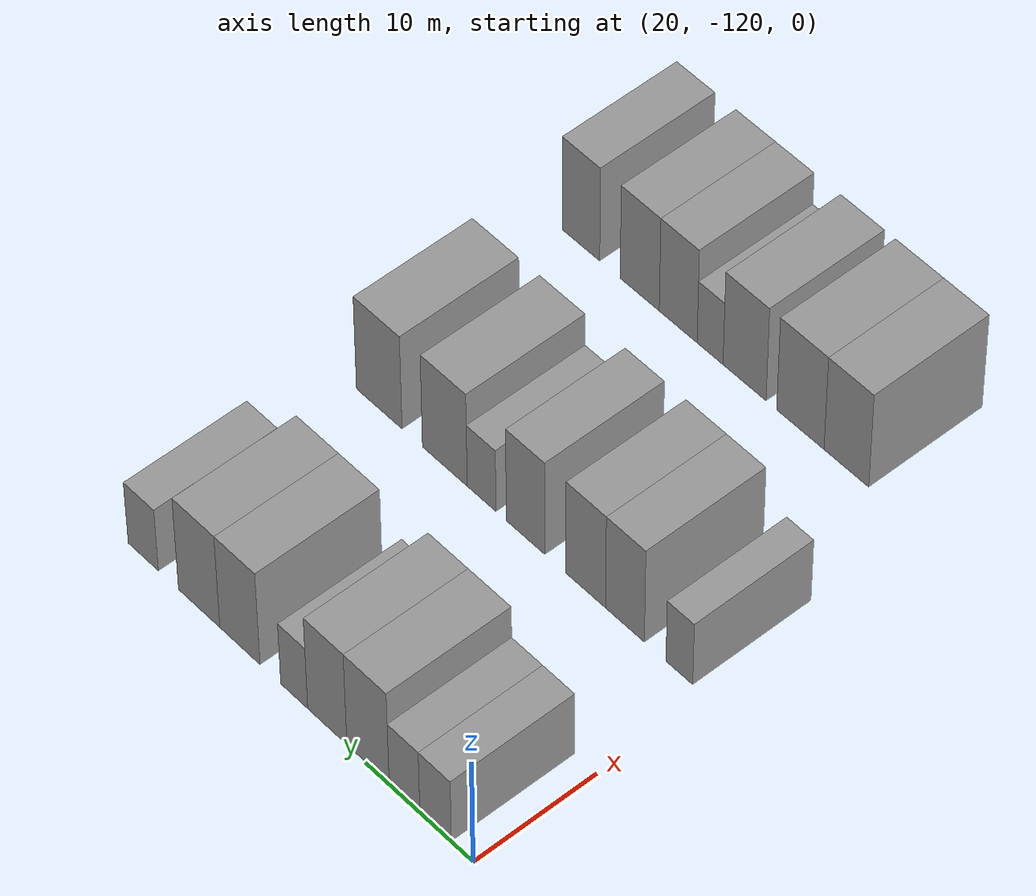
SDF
<sdf version="1.6">
 <world name="default">
  <model name="building_32">
   <static>1</static>
   <pose>25.0000 -116.4563 0 0.000000 0.000000 0.000000</pose>
   <link name="link">
    <pose>0 0 3.00 0 0 0</pose>
    <collision name="collision"><geometry><box><size>10.0000 2.9341 6.0000</size></box></geometry></collision>
    <visual name="visual">
     <cast_shadows>0</cast_shadows>
     <geometry><box><size>10.0000 2.9341 6.0000</size></box></geometry>
     <material>
      <script>
       <uri>model://grey_wall/materials/scripts</uri>
       <uri>model://grey_wall/materials/textures</uri>
       <name>vrc/grey_wall</name>
      </script>
     </material>
    </visual>
   </link>
  </model>
  <model name="building_33">
   <static>1</static>
   <pose>25.0000 -113.5589 0 0.000000 0.000000 0.000000</pose>
   <link name="link">
    <pose>0 0 3.00 0 0 0</pose>
    <collision name="collision"><geometry><box><size>10.0000 2.8606 6.0000</size></box></geometry></collision>
    <visual name="visual">
     <cast_shadows>0</cast_shadows>
     <geometry><box><size>10.0000 2.8606 6.0000</size></box></geometry>
     <material>
      <script>
       <uri>model://grey_wall/materials/scripts</uri>
       <uri>model://grey_wall/materials/textures</uri>
       <name>vrc/grey_wall</name>
      </script>
     </material>
    </visual>
   </link>
  </model>
  <model name="building_34">
   <static>1</static>
   <pose>25.0000 -110.1387 0 0.000000 0.000000 0.000000</pose>
   <link name="link">
    <pose>0 0 4.50 0 0 0</pose>
    <collision name="collision"><geometry><box><size>10.0000 3.9799 9.0000</size></box></geometry></collision>
    <visual name="visual">
     <cast_shadows>0</cast_shadows>
     <geometry><box><size>10.0000 3.9799 9.0000</size></box></geometry>
     <material>
      <script>
       <uri>model://grey_wall/materials/scripts</uri>
       <uri>model://grey_wall/materials/textures</uri>
       <name>vrc/grey_wall</name>
      </script>
     </material>
    </visual>
   </link>
  </model>
  <model name="building_35">
   <static>1</static>
   <pose>25.0000 -106.2834 0 0.000000 0.000000 0.000000</pose>
   <link name="link">
    <pose>0 0 4.50 0 0 0</pose>
    <collision name="collision"><geometry><box><size>10.0000 3.7308 9.0000</size></box></geometry></collision>
    <visual name="visual">
     <cast_shadows>0</cast_shadows>
     <geometry><box><size>10.0000 3.7308 9.0000</size></box></geometry>
     <material>
      <script>
       <uri>model://grey_wall/materials/scripts</uri>
       <uri>model://grey_wall/materials/textures</uri>
       <name>vrc/grey_wall</name>
      </script>
     </material>
    </visual>
   </link>
  </model>
  <model name="building_36">
   <static>1</static>
   <pose>25.0000 -103.1273 0 0.000000 0.000000 0.000000</pose>
   <link name="link">
    <pose>0 0 3.00 0 0 0</pose>
    <collision name="collision"><geometry><box><size>10.0000 2.5815 6.0000</size></box></geometry></collision>
    <visual name="visual">
     <cast_shadows>0</cast_shadows>
     <geometry><box><size>10.0000 2.5815 6.0000</size></box></geometry>
     <material>
      <script>
       <uri>model://grey_wall/materials/scripts</uri>
       <uri>model://grey_wall/materials/textures</uri>
       <name>vrc/grey_wall</name>
      </script>
     </material>
    </visual>
   </link>
  </model>
  <model name="building_37">
   <static>1</static>
   <pose>25.0000 -97.8834 0 0.000000 0.000000 0.000000</pose>
   <link name="link">
    <pose>0 0 4.50 0 0 0</pose>
    <collision name="collision"><geometry><box><size>10.0000 3.9064 9.0000</size></box></geometry></collision>
    <visual name="visual">
     <cast_shadows>0</cast_shadows>
     <geometry><box><size>10.0000 3.9064 9.0000</size></box></geometry>
     <material>
      <script>
       <uri>model://grey_wall/materials/scripts</uri>
       <uri>model://grey_wall/materials/textures</uri>
       <name>vrc/grey_wall</name>
      </script>
     </material>
    </visual>
   </link>
  </model>
  <model name="building_38">
   <static>1</static>
   <pose>25.0000 -93.9067 0 0.000000 0.000000 0.000000</pose>
   <link name="link">
    <pose>0 0 4.50 0 0 0</pose>
    <collision name="collision"><geometry><box><size>10.0000 4.0469 9.0000</size></box></geometry></collision>
    <visual name="visual">
     <cast_shadows>0</cast_shadows>
     <geometry><box><size>10.0000 4.0469 9.0000</size></box></geometry>
     <material>
      <script>
       <uri>model://grey_wall/materials/scripts</uri>
       <uri>model://grey_wall/materials/textures</uri>
       <name>vrc/grey_wall</name>
      </script>
     </material>
    </visual>
   </link>
  </model>
  <model name="building_39">
   <static>1</static>
   <pose>25.0000 -88.3887 0 0.000000 0.000000 0.000000</pose>
   <link name="link">
    <pose>0 0 3.00 0 0 0</pose>
    <collision name="collision"><geometry><box><size>10.0000 2.9891 6.0000</size></box></geometry></collision>
    <visual name="visual">
     <cast_shadows>0</cast_shadows>
     <geometry><box><size>10.0000 2.9891 6.0000</size></box></geometry>
     <material>
      <script>
       <uri>model://grey_wall/materials/scripts</uri>
       <uri>model://grey_wall/materials/textures</uri>
       <name>vrc/grey_wall</name>
      </script>
     </material>
    </visual>
   </link>
  </model>
  <model name="building_152">
   <static>1</static>
   <pose>44.0000 -117.5656 0 0.000000 0.000000 0.000000</pose>
   <link name="link">
    <pose>0 0 3.00 0 0 0</pose>
    <collision name="collision"><geometry><box><size>10.0000 2.4576 6.0000</size></box></geometry></collision>
    <visual name="visual">
     <cast_shadows>0</cast_shadows>
     <geometry><box><size>10.0000 2.4576 6.0000</size></box></geometry>
     <material>
      <script>
       <uri>model://grey_wall/materials/scripts</uri>
       <uri>model://grey_wall/materials/textures</uri>
       <name>vrc/grey_wall</name>
      </script>
     </material>
    </visual>
   </link>
  </model>
  <model name="building_153">
   <static>1</static>
   <pose>44.0000 -112.5289 0 0.000000 0.000000 0.000000</pose>
   <link name="link">
    <pose>0 0 4.50 0 0 0</pose>
    <collision name="collision"><geometry><box><size>10.0000 3.6159 9.0000</size></box></geometry></collision>
    <visual name="visual">
     <cast_shadows>0</cast_shadows>
     <geometry><box><size>10.0000 3.6159 9.0000</size></box></geometry>
     <material>
      <script>
       <uri>model://grey_wall/materials/scripts</uri>
       <uri>model://grey_wall/materials/textures</uri>
       <name>vrc/grey_wall</name>
      </script>
     </material>
    </visual>
   </link>
  </model>
  <model name="building_154">
   <static>1</static>
   <pose>44.0000 -108.8619 0 0.000000 0.000000 0.000000</pose>
   <link name="link">
    <pose>0 0 4.50 0 0 0</pose>
    <collision name="collision"><geometry><box><size>10.0000 3.7181 9.0000</size></box></geometry></collision>
    <visual name="visual">
     <cast_shadows>0</cast_shadows>
     <geometry><box><size>10.0000 3.7181 9.0000</size></box></geometry>
     <material>
      <script>
       <uri>model://grey_wall/materials/scripts</uri>
       <uri>model://grey_wall/materials/textures</uri>
       <name>vrc/grey_wall</name>
      </script>
     </material>
    </visual>
   </link>
  </model>
  <model name="building_155">
   <static>1</static>
   <pose>44.0000 -103.1716 0 0.000000 0.000000 0.000000</pose>
   <link name="link">
    <pose>0 0 4.50 0 0 0</pose>
    <collision name="collision"><geometry><box><size>10.0000 3.6625 9.0000</size></box></geometry></collision>
    <visual name="visual">
     <cast_shadows>0</cast_shadows>
     <geometry><box><size>10.0000 3.6625 9.0000</size></box></geometry>
     <material>
      <script>
       <uri>model://grey_wall/materials/scripts</uri>
       <uri>model://grey_wall/materials/textures</uri>
       <name>vrc/grey_wall</name>
      </script>
     </material>
    </visual>
   </link>
  </model>
  <model name="building_156">
   <static>1</static>
   <pose>44.0000 -98.9568 0 0.000000 0.000000 0.000000</pose>
   <link name="link">
    <pose>0 0 3.00 0 0 0</pose>
    <collision name="collision"><geometry><box><size>10.0000 2.7672 6.0000</size></box></geometry></collision>
    <visual name="visual">
     <cast_shadows>0</cast_shadows>
     <geometry><box><size>10.0000 2.7672 6.0000</size></box></geometry>
     <material>
      <script>
       <uri>model://grey_wall/materials/scripts</uri>
       <uri>model://grey_wall/materials/textures</uri>
       <name>vrc/grey_wall</name>
      </script>
     </material>
    </visual>
   </link>
  </model>
  <model name="building_157">
   <static>1</static>
   <pose>44.0000 -95.4016 0 0.000000 0.000000 0.000000</pose>
   <link name="link">
    <pose>0 0 4.50 0 0 0</pose>
    <collision name="collision"><geometry><box><size>10.0000 4.3432 9.0000</size></box></geometry></collision>
    <visual name="visual">
     <cast_shadows>0</cast_shadows>
     <geometry><box><size>10.0000 4.3432 9.0000</size></box></geometry>
     <material>
      <script>
       <uri>model://grey_wall/materials/scripts</uri>
       <uri>model://grey_wall/materials/textures</uri>
       <name>vrc/grey_wall</name>
      </script>
     </material>
    </visual>
   </link>
  </model>
  <model name="building_158">
   <static>1</static>
   <pose>44.0000 -88.9884 0 0.000000 0.000000 0.000000</pose>
   <link name="link">
    <pose>0 0 4.50 0 0 0</pose>
    <collision name="collision"><geometry><box><size>10.0000 4.4830 9.0000</size></box></geometry></collision>
    <visual name="visual">
     <cast_shadows>0</cast_shadows>
     <geometry><box><size>10.0000 4.4830 9.0000</size></box></geometry>
     <material>
      <script>
       <uri>model://grey_wall/materials/scripts</uri>
       <uri>model://grey_wall/materials/textures</uri>
       <name>vrc/grey_wall</name>
      </script>
     </material>
    </visual>
   </link>
  </model>
  <model name="building_270">
   <static>1</static>
   <pose>63.0000 -112.4644 0 0.000000 0.000000 0.000000</pose>
   <link name="link">
    <pose>0 0 4.50 0 0 0</pose>
    <collision name="collision"><geometry><box><size>10.0000 4.1460 9.0000</size></box></geometry></collision>
    <visual name="visual">
     <cast_shadows>0</cast_shadows>
     <geometry><box><size>10.0000 4.1460 9.0000</size></box></geometry>
     <material>
      <script>
       <uri>model://grey_wall/materials/scripts</uri>
       <uri>model://grey_wall/materials/textures</uri>
       <name>vrc/grey_wall</name>
      </script>
     </material>
    </visual>
   </link>
  </model>
  <model name="building_271">
   <static>1</static>
   <pose>63.0000 -108.1754 0 0.000000 0.000000 0.000000</pose>
   <link name="link">
    <pose>0 0 4.50 0 0 0</pose>
    <collision name="collision"><geometry><box><size>10.0000 4.4320 9.0000</size></box></geometry></collision>
    <visual name="visual">
     <cast_shadows>0</cast_shadows>
     <geometry><box><size>10.0000 4.4320 9.0000</size></box></geometry>
     <material>
      <script>
       <uri>model://grey_wall/materials/scripts</uri>
       <uri>model://grey_wall/materials/textures</uri>
       <name>vrc/grey_wall</name>
      </script>
     </material>
    </visual>
   </link>
  </model>
  <model name="building_272">
   <static>1</static>
   <pose>63.0000 -102.9173 0 0.000000 0.000000 0.000000</pose>
   <link name="link">
    <pose>0 0 4.50 0 0 0</pose>
    <collision name="collision"><geometry><box><size>10.0000 4.0842 9.0000</size></box></geometry></collision>
    <visual name="visual">
     <cast_shadows>0</cast_shadows>
     <geometry><box><size>10.0000 4.0842 9.0000</size></box></geometry>
     <material>
      <script>
       <uri>model://grey_wall/materials/scripts</uri>
       <uri>model://grey_wall/materials/textures</uri>
       <name>vrc/grey_wall</name>
      </script>
     </material>
    </visual>
   </link>
  </model>
  <model name="building_273">
   <static>1</static>
   <pose>63.0000 -99.6327 0 0.000000 0.000000 0.000000</pose>
   <link name="link">
    <pose>0 0 3.00 0 0 0</pose>
    <collision name="collision"><geometry><box><size>10.0000 2.4851 6.0000</size></box></geometry></collision>
    <visual name="visual">
     <cast_shadows>0</cast_shadows>
     <geometry><box><size>10.0000 2.4851 6.0000</size></box></geometry>
     <material>
      <script>
       <uri>model://grey_wall/materials/scripts</uri>
       <uri>model://grey_wall/materials/textures</uri>
       <name>vrc/grey_wall</name>
      </script>
     </material>
    </visual>
   </link>
  </model>
  <model name="building_274">
   <static>1</static>
   <pose>63.0000 -96.5699 0 0.000000 0.000000 0.000000</pose>
   <link name="link">
    <pose>0 0 4.50 0 0 0</pose>
    <collision name="collision"><geometry><box><size>10.0000 3.6407 9.0000</size></box></geometry></collision>
    <visual name="visual">
     <cast_shadows>0</cast_shadows>
     <geometry><box><size>10.0000 3.6407 9.0000</size></box></geometry>
     <material>
      <script>
       <uri>model://grey_wall/materials/scripts</uri>
       <uri>model://grey_wall/materials/textures</uri>
       <name>vrc/grey_wall</name>
      </script>
     </material>
    </visual>
   </link>
  </model>
  <model name="building_275">
   <static>1</static>
   <pose>63.0000 -92.8543 0 0.000000 0.000000 0.000000</pose>
   <link name="link">
    <pose>0 0 4.50 0 0 0</pose>
    <collision name="collision"><geometry><box><size>10.0000 3.7905 9.0000</size></box></geometry></collision>
    <visual name="visual">
     <cast_shadows>0</cast_shadows>
     <geometry><box><size>10.0000 3.7905 9.0000</size></box></geometry>
     <material>
      <script>
       <uri>model://grey_wall/materials/scripts</uri>
       <uri>model://grey_wall/materials/textures</uri>
       <name>vrc/grey_wall</name>
      </script>
     </material>
    </visual>
   </link>
  </model>
  <model name="building_276">
   <static>1</static>
   <pose>63.0000 -87.1111 0 0.000000 0.000000 0.000000</pose>
   <link name="link">
    <pose>0 0 4.50 0 0 0</pose>
    <collision name="collision"><geometry><box><size>10.0000 3.6958 9.0000</size></box></geometry></collision>
    <visual name="visual">
     <cast_shadows>0</cast_shadows>
     <geometry><box><size>10.0000 3.6958 9.0000</size></box></geometry>
     <material>
      <script>
       <uri>model://grey_wall/materials/scripts</uri>
       <uri>model://grey_wall/materials/textures</uri>
       <name>vrc/grey_wall</name>
      </script>
     </material>
    </visual>
   </link>
  </model>
 </world>
</sdf>
